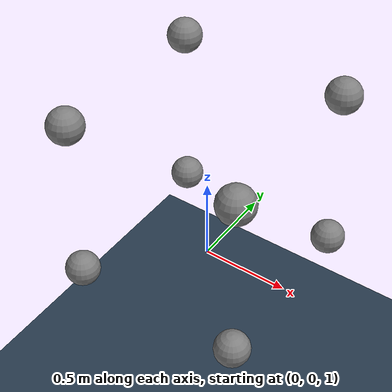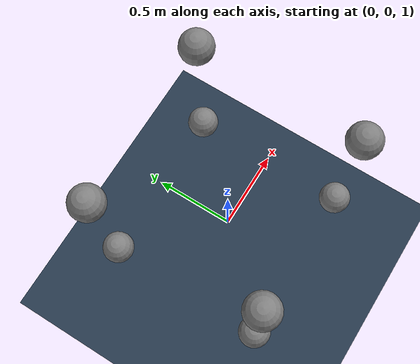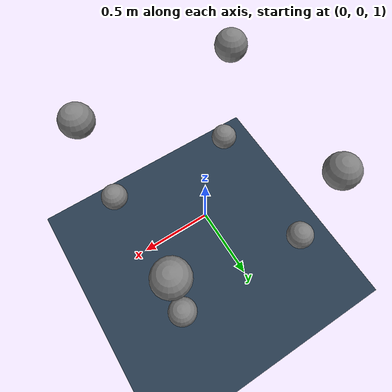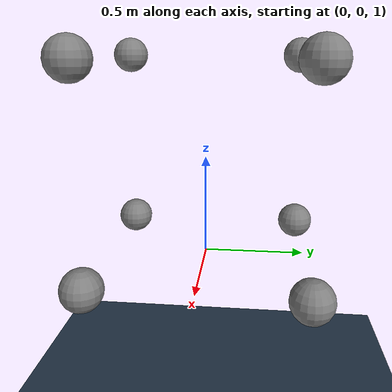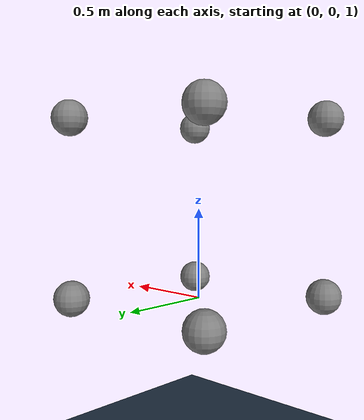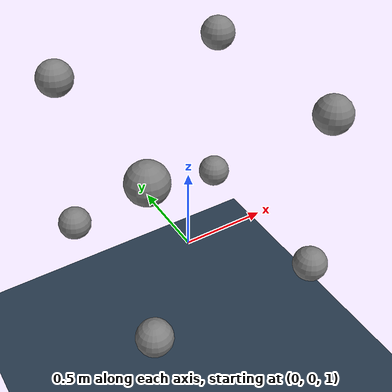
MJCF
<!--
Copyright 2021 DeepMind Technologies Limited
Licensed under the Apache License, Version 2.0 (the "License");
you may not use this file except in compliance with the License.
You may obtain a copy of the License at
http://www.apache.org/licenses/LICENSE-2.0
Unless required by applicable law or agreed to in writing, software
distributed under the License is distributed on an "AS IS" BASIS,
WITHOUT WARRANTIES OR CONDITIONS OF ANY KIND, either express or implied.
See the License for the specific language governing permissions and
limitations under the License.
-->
<mujoco model="Soft body">
  <include file="scene.xml"/>

  <extension>
    <plugin plugin="mujoco.elasticity.corotational">
      <instance name="elasticity">
        <config key="modulus" value="1e7"/>
      </instance>
    </plugin>
  </extension>

  <compiler autolimits="true"/>

  <size memory="2M"/>

  <worldbody>
    <body pos="-.5 -.5 1">
      <freejoint/>
      <geom size=".1" density="10" pos=".5 .5 .5" group="4"/>
      <body pos="0 0 0">
        <joint type="slide" axis="1 1 1"/>
        <geom size=".1" density="10"/>
        <plugin instance="elasticity"/>
        <site name="v0"/>
      </body>
      <body pos="1 0 0">
        <joint type="slide" axis="-1 1 1"/>
        <geom size=".1" density="10"/>
        <plugin instance="elasticity"/>
        <site name="v1"/>
      </body>
      <body pos="1 1 0">
        <joint type="slide" axis="1 0 0"/>
        <joint type="slide" axis="0 1 0"/>
        <joint type="slide" axis="0 0 1"/>
        <geom size=".1" density="10"/>
        <plugin instance="elasticity"/>
        <site name="v2"/>
      </body>
      <body pos="0 1 0">
        <joint type="slide" axis="1 0 0"/>
        <joint type="slide" axis="0 1 0"/>
        <joint type="slide" axis="0 0 1"/>
        <geom size=".1" density="10"/>
        <plugin instance="elasticity"/>
        <site name="v3"/>
      </body>
      <body pos="0 0 1">
        <joint type="slide" axis="1 0 0"/>
        <joint type="slide" axis="0 1 0"/>
        <joint type="slide" axis="0 0 1"/>
        <geom size=".1" density="10"/>
        <plugin instance="elasticity"/>
        <site name="v4"/>
      </body>
      <body pos="1 0 1">
        <joint type="slide" axis="1 0 0"/>
        <joint type="slide" axis="0 1 0"/>
        <joint type="slide" axis="0 0 1"/>
        <geom size=".1" density="10"/>
        <plugin instance="elasticity"/>
        <site name="v5"/>
      </body>
      <body pos="1 1 1">
        <joint type="slide" axis="1 1 1"/>
        <geom size=".1" density="10"/>
        <plugin instance="elasticity"/>
        <site name="v6"/>
      </body>
      <body pos="0 1 1">
        <joint type="slide" axis="-1 1 1"/>
        <geom size=".1" density="10"/>
        <plugin instance="elasticity"/>
        <site name="v7"/>
      </body>
    </body>
  </worldbody>
</mujoco>

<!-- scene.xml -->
<mujoco>
  <compiler meshdir="asset" texturedir="asset"/>

  <statistic meansize=".05"/>

  <visual>
    <rgba haze="0.15 0.25 0.35 1"/>
    <quality shadowsize="4096"/>
    <map stiffness="700" shadowscale="0.5" fogstart="1" fogend="15" zfar="40" haze="1"/>
  </visual>

  <asset>
    <texture type="skybox" builtin="gradient" rgb1="0.3 0.5 0.7" rgb2="0 0 0" width="512" height="512"/>
    <texture name="texplane" type="2d" builtin="checker" rgb1=".2 .3 .4" rgb2=".1 0.15 0.2"
      width="512" height="512" mark="cross" markrgb=".8 .8 .8"/>

    <material name="matplane" reflectance="0.3" texture="texplane" texrepeat="10 10" texuniform="true"/>
  </asset>

  <worldbody>
    <light diffuse=".4 .4 .4" specular="0.1 0.1 0.1" pos="0 0 2.0" dir="0 0 -1" castshadow="false"/>
    <light directional="true" diffuse=".8 .8 .8" specular="0.2 0.2 0.2" pos="0 0 4" dir="0 0 -1"/>

    <geom name="ground" type="plane" size="0 0 1" pos="0 0 0" quat="1 0 0 0" material="matplane" condim="1"/>
  </worldbody>
</mujoco>
